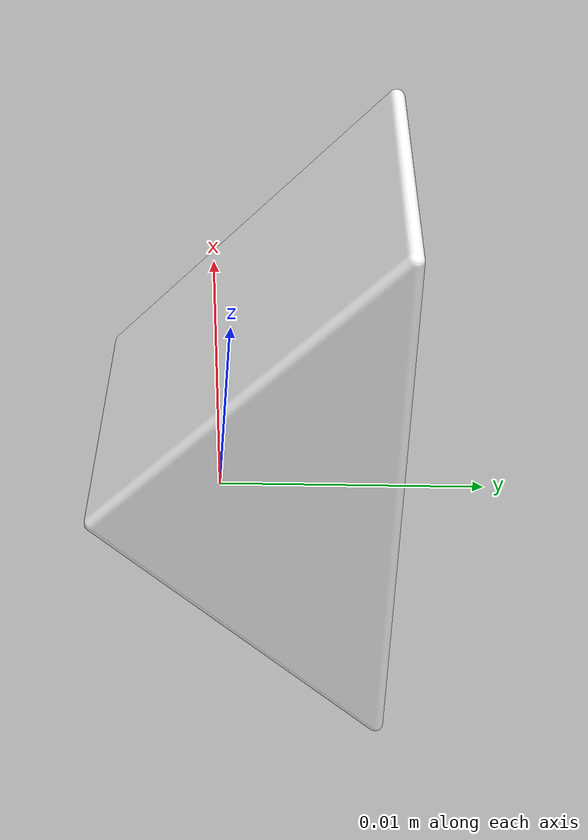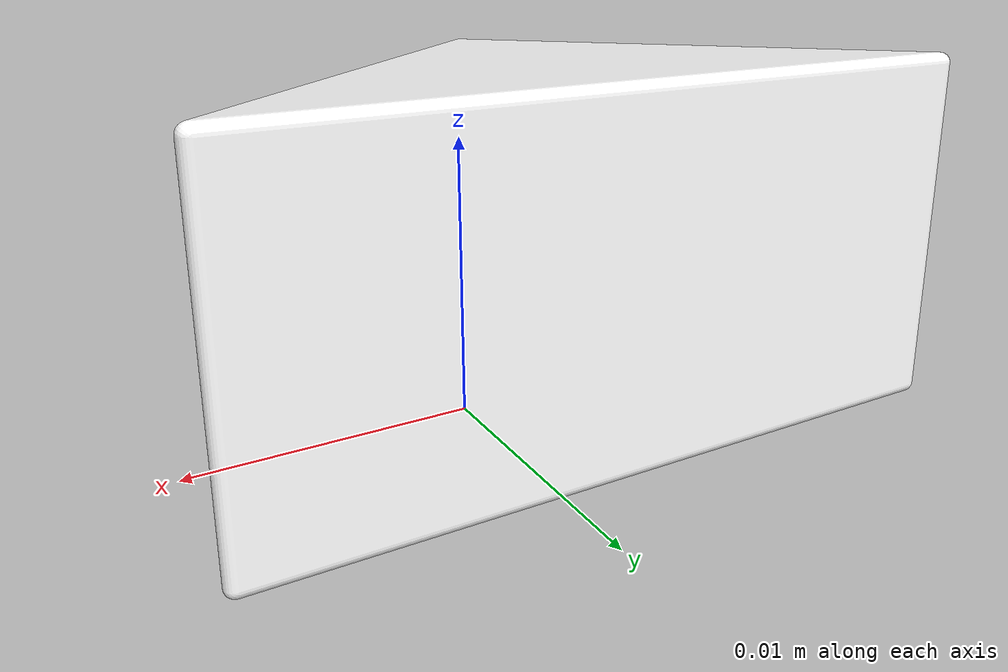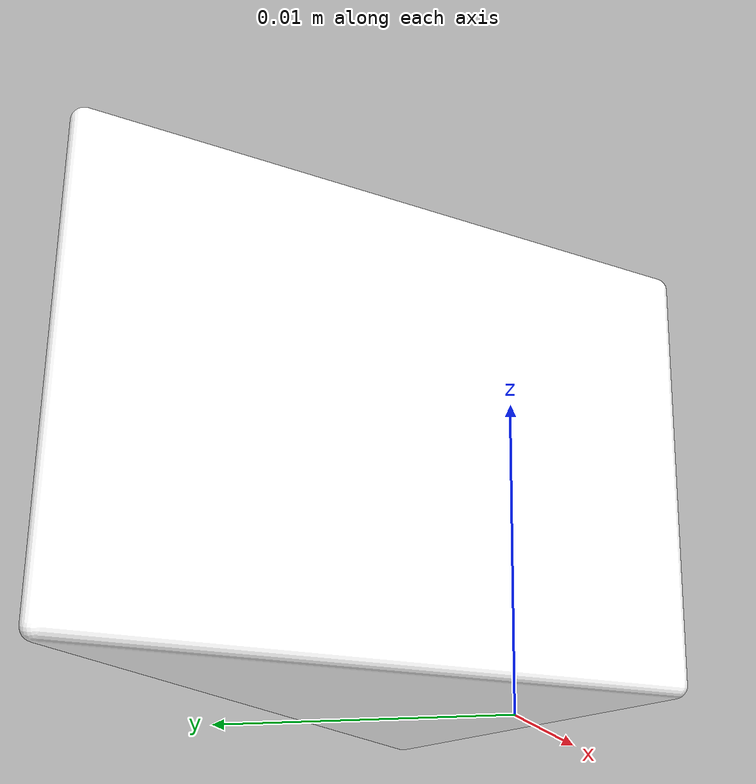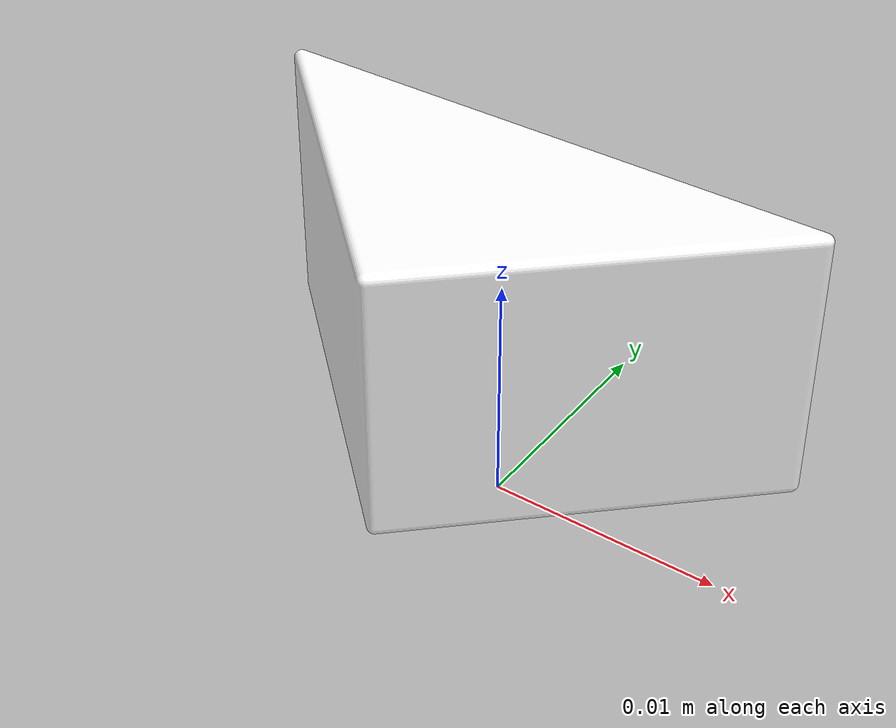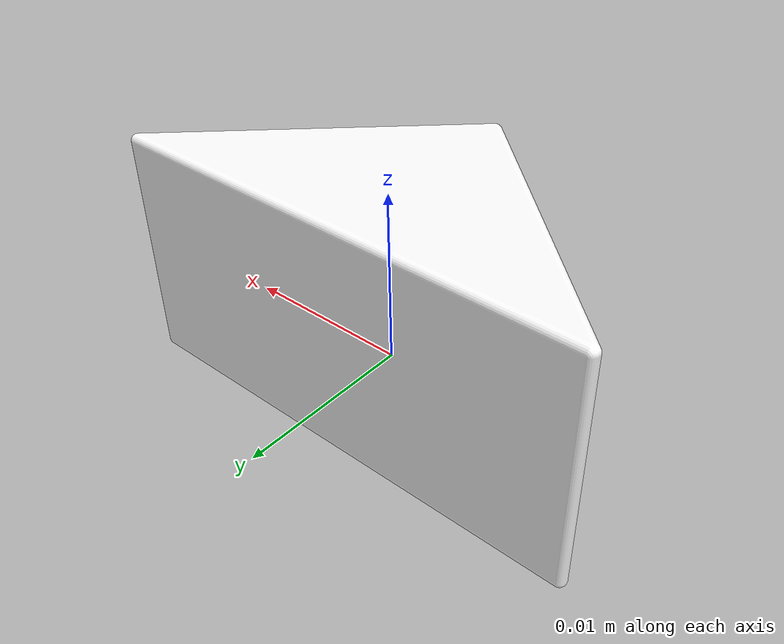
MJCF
<?xml version="1.0" ?>
<mujoco model="peginhole-triangle">
  <asset>
    <mesh file="../meshes/peginhole-triangle.stl" name="peginhole-triangle_mesh" scale="0.0007 0.0007 0.0007"/>
    <material name="peginhole-triangle" reflectance="0.7" texrepeat="15 15" texuniform="true"/>
  </asset>
  <worldbody>
    <body>
      <body name="object">
        <geom pos="0 0 0" mesh="peginhole-triangle_mesh" type="mesh" solimp="0.998 0.998 0.001" solref="0.001 1" density="50" friction="0.95 0.3 0.1" material="peginhole-triangle" group="0" condim="4"/>
      </body>
      <site rgba="0 0 0 0" size="0.005" pos="-0.012770796663889717 -0.008585195632909102 -0.006300000004316005" name="bottom_site"/>
      <site rgba="0 0 0 0" size="0.005" pos="0.01277079726921575 0.003882678512598709 0.006299999995683994" name="top_site"/>
      <site rgba="0 0 0 0" size="0.005" pos="0.012770796966552735 0.006233937072753906 0" name="horizontal_radius_site"/>
    </body>
  </worldbody>
</mujoco>
